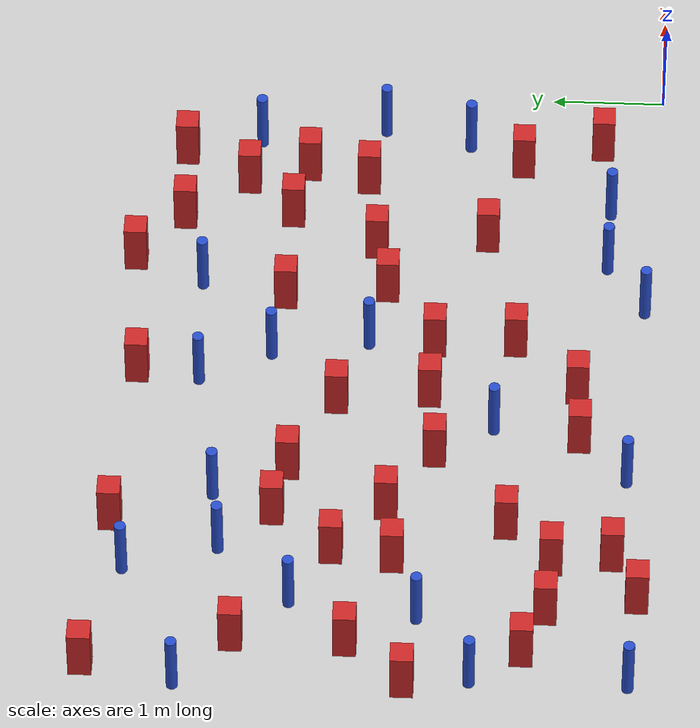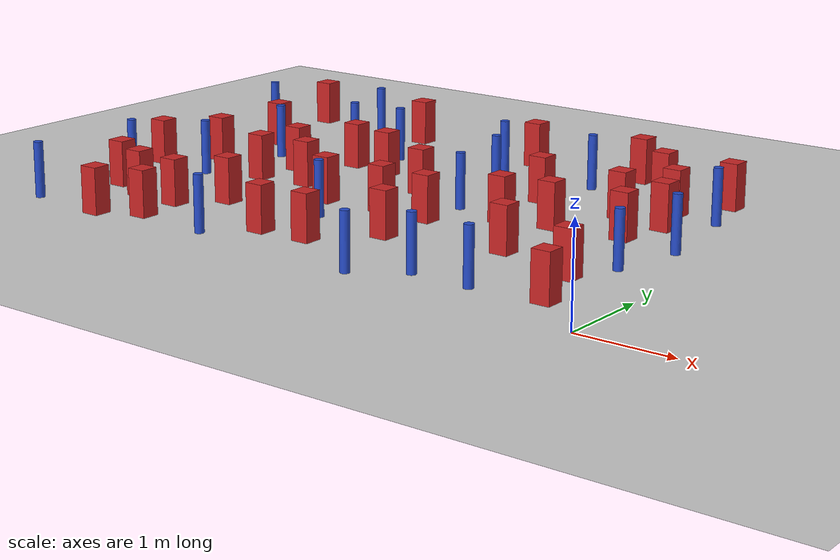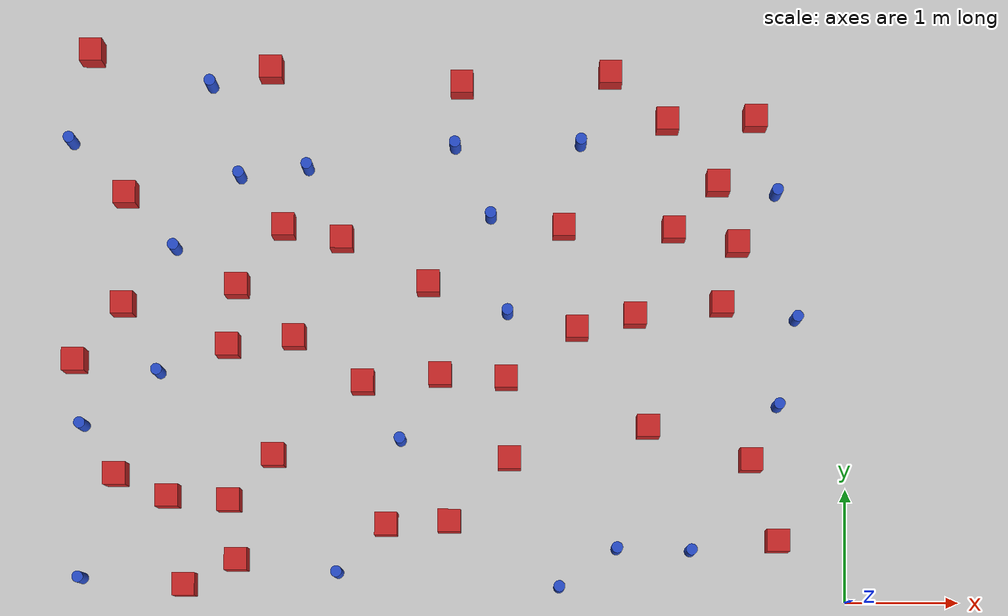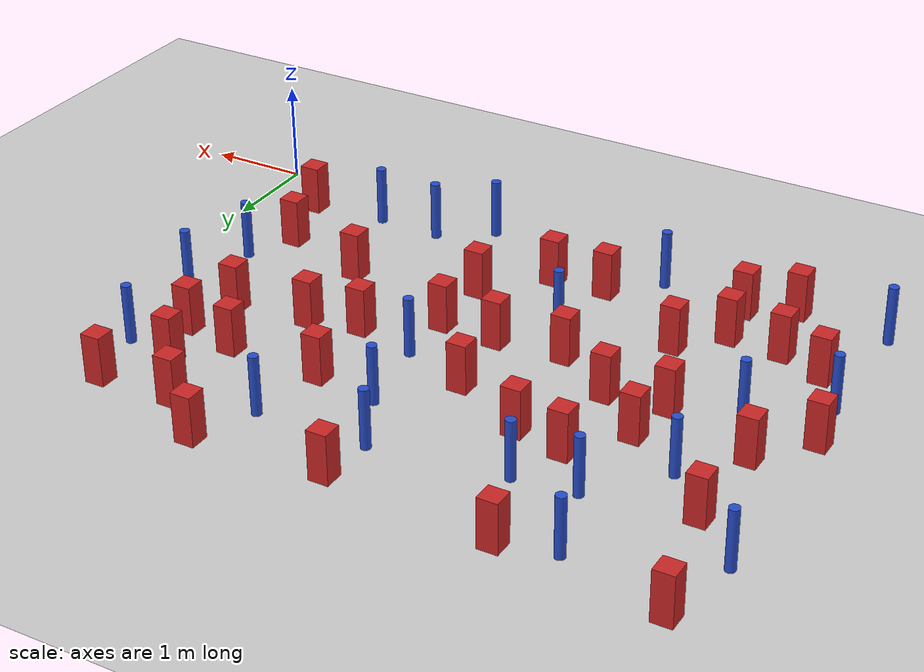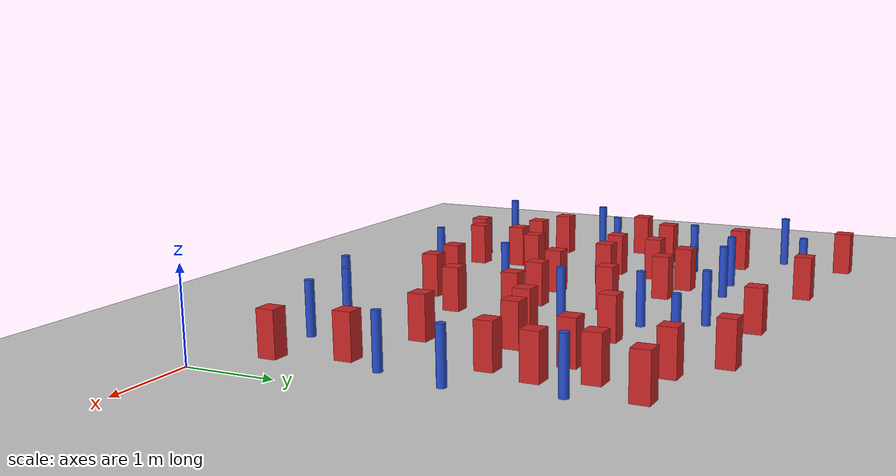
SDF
<sdf version="1.6">
 <world name="default">
  <model name="ground_plane">
   <static>1</static>
   <link name="link">
    <collision name="collision">
     <geometry><plane><normal>0 0 1</normal><size>100 100</size></plane></geometry>
     <surface><friction><ode><mu>100</mu><mu2>50</mu2></ode></friction></surface>
    </collision>
    <visual name="visual">
     <cast_shadows>0</cast_shadows>
     <geometry><plane><normal>0 0 1</normal><size>100 100</size></plane></geometry>
     <material>
      <ambient>1.0 1.0 1.0 1.0</ambient>
      <diffuse>0.8 0.8 0.8 1.0</diffuse>
      <specular>0.01 0.01 0.01 1.000000</specular>
     </material>
    </visual>
   </link>
  </model>
  <model name="square_post_obstacle19">
   <static>true</static>
   <pose>-1.52579116777 3.30003734755 -6.11067671241e-07 -5.50515727128e-06 -8.79689657224e-07 2.37013304536e-05</pose>
   <link name="link">
    <pose>0 0 0.25 0 -0 0</pose>
    <inertial>
     <mass>100</mass>
     <inertia>
      <ixx>0.166667</ixx>
      <ixy>0</ixy>
      <ixz>0</ixz>
      <iyy>0.166667</iyy>
      <iyz>0</iyz>
      <izz>0.166667</izz>
     </inertia>
    </inertial>
    <collision name="collision"><geometry><box><size>.2 .2 .5</size></box></geometry></collision>
    <visual name="visual">
     <geometry><box><size>.2 .2 .5</size></box></geometry>
     <material>
      <script><name>Gazebo/Red</name><uri>file://media/materials/scripts/gazebo.material</uri></script>
     </material>
    </visual>
   </link>
  </model>
  <model name="square_post_obstacle21">
   <static>true</static>
   <pose>-3.70066216727 2.81716564771 -6.11067671241e-07 -5.50515727128e-06 -8.79689657224e-07 2.37013304536e-05</pose>
   <link name="link">
    <pose>0 0 0.25 0 -0 0</pose>
    <inertial>
     <mass>100</mass>
     <inertia>
      <ixx>0.166667</ixx>
      <ixy>0</ixy>
      <ixz>0</ixz>
      <iyy>0.166667</iyy>
      <iyz>0</iyz>
      <izz>0.166667</izz>
     </inertia>
    </inertial>
    <collision name="collision"><geometry><box><size>.2 .2 .5</size></box></geometry></collision>
    <visual name="visual">
     <geometry><box><size>.2 .2 .5</size></box></geometry>
     <material>
      <script><name>Gazebo/Red</name><uri>file://media/materials/scripts/gazebo.material</uri></script>
     </material>
    </visual>
   </link>
  </model>
  <model name="square_post_obstacle23">
   <static>true</static>
   <pose>-6.40421610762 2.62677100715 -6.11067671241e-07 -5.50515727128e-06 -8.79689657224e-07 2.37013304536e-05</pose>
   <link name="link">
    <pose>0 0 0.25 0 -0 0</pose>
    <inertial>
     <mass>100</mass>
     <inertia>
      <ixx>0.166667</ixx>
      <ixy>0</ixy>
      <ixz>0</ixz>
      <iyy>0.166667</iyy>
      <iyz>0</iyz>
      <izz>0.166667</izz>
     </inertia>
    </inertial>
    <collision name="collision"><geometry><box><size>.2 .2 .5</size></box></geometry></collision>
    <visual name="visual">
     <geometry><box><size>.2 .2 .5</size></box></geometry>
     <material>
      <script><name>Gazebo/Red</name><uri>file://media/materials/scripts/gazebo.material</uri></script>
     </material>
    </visual>
   </link>
  </model>
  <model name="square_post_obstacle24">
   <static>true</static>
   <pose>-5.99418448434 0.926012250818 -6.11067671241e-07 -5.50515727128e-06 -8.79689657224e-07 2.37013304536e-05</pose>
   <link name="link">
    <pose>0 0 0.25 0 -0 0</pose>
    <inertial>
     <mass>100</mass>
     <inertia>
      <ixx>0.166667</ixx>
      <ixy>0</ixy>
      <ixz>0</ixz>
      <iyy>0.166667</iyy>
      <iyz>0</iyz>
      <izz>0.166667</izz>
     </inertia>
    </inertial>
    <collision name="collision"><geometry><box><size>.2 .2 .5</size></box></geometry></collision>
    <visual name="visual">
     <geometry><box><size>.2 .2 .5</size></box></geometry>
     <material>
      <script><name>Gazebo/Red</name><uri>file://media/materials/scripts/gazebo.material</uri></script>
     </material>
    </visual>
   </link>
  </model>
  <model name="pole_obstacle21">
   <static>true</static>
   <pose>-4.77502252247 3.84748373212 -9.47619616065e-06 5.49618799738e-07 2.36310414051e-07 -1.55090534805e-07</pose>
   <link name="link">
    <pose>0 0 0.3 0 -0 0</pose>
    <inertial>
     <mass>1</mass>
     <inertia><ixx>0.145833</ixx><ixy>0</ixy><ixz>0</ixz><iyy>0.145833</iyy><iyz>0</iyz><izz>0.125</izz></inertia>
    </inertial>
    <collision name="collision">
     <geometry><cylinder><radius>0.05</radius><length>.6</length></cylinder></geometry>
    </collision>
    <visual name="visual">
     <geometry><cylinder><radius>0.05</radius><length>.6</length></cylinder></geometry>
     <material>
      <script><name>Gazebo/Blue</name><uri>file://media/materials/scripts/gazebo.material</uri></script>
     </material>
    </visual>
   </link>
  </model>
  <model name="square_post_obstacle33">
   <static>true</static>
   <pose>-2.38381822397 2.4193742931 -6.11067671241e-07 -5.50515727128e-06 -8.79689657224e-07 2.37013304536e-05</pose>
   <link name="link">
    <pose>0 0 0.25 0 -0 0</pose>
    <inertial>
     <mass>100</mass>
     <inertia>
      <ixx>0.166667</ixx>
      <ixy>0</ixy>
      <ixz>0</ixz>
      <iyy>0.166667</iyy>
      <iyz>0</iyz>
      <izz>0.166667</izz>
     </inertia>
    </inertial>
    <collision name="collision"><geometry><box><size>.2 .2 .5</size></box></geometry></collision>
    <visual name="visual">
     <geometry><box><size>.2 .2 .5</size></box></geometry>
     <material>
      <script><name>Gazebo/Red</name><uri>file://media/materials/scripts/gazebo.material</uri></script>
     </material>
    </visual>
   </link>
  </model>
  <model name="pole_obstacle30">
   <static>true</static>
   <pose>-2.35172823157 4.06939643298 -9.47619616065e-06 5.49618799738e-07 2.3631041406e-07 -1.55090534801e-07</pose>
   <link name="link">
    <pose>0 0 0.3 0 -0 0</pose>
    <inertial>
     <mass>1</mass>
     <inertia><ixx>0.145833</ixx><ixy>0</ixy><ixz>0</ixz><iyy>0.145833</iyy><iyz>0</iyz><izz>0.125</izz></inertia>
    </inertial>
    <collision name="collision">
     <geometry><cylinder><radius>0.05</radius><length>.6</length></cylinder></geometry>
    </collision>
    <visual name="visual">
     <geometry><cylinder><radius>0.05</radius><length>.6</length></cylinder></geometry>
     <material>
      <script><name>Gazebo/Blue</name><uri>file://media/materials/scripts/gazebo.material</uri></script>
     </material>
    </visual>
   </link>
  </model>
  <model name="square_post_obstacle38">
   <static>true</static>
   <pose>-4.88639136829 2.33557536852 -6.11067671241e-07 -5.50515727128e-06 -8.79689657224e-07 2.37013304536e-05</pose>
   <link name="link">
    <pose>0 0 0.25 0 -0 0</pose>
    <inertial>
     <mass>100</mass>
     <inertia>
      <ixx>0.166667</ixx>
      <ixy>0</ixy>
      <ixz>0</ixz>
      <iyy>0.166667</iyy>
      <iyz>0</iyz>
      <izz>0.166667</izz>
     </inertia>
    </inertial>
    <collision name="collision"><geometry><box><size>.2 .2 .5</size></box></geometry></collision>
    <visual name="visual">
     <geometry><box><size>.2 .2 .5</size></box></geometry>
     <material>
      <script><name>Gazebo/Red</name><uri>file://media/materials/scripts/gazebo.material</uri></script>
     </material>
    </visual>
   </link>
  </model>
  <model name="square_post_obstacle44">
   <static>true</static>
   <pose>-5.39557162124 2.79112560461 -6.11067671241e-07 -5.50515727128e-06 -8.79689657224e-07 2.37013304536e-05</pose>
   <link name="link">
    <pose>0 0 0.25 0 -0 0</pose>
    <inertial>
     <mass>100</mass>
     <inertia>
      <ixx>0.166667</ixx>
      <ixy>0</ixy>
      <ixz>0</ixz>
      <iyy>0.166667</iyy>
      <iyz>0</iyz>
      <izz>0.166667</izz>
     </inertia>
    </inertial>
    <collision name="collision"><geometry><box><size>.2 .2 .5</size></box></geometry></collision>
    <visual name="visual">
     <geometry><box><size>.2 .2 .5</size></box></geometry>
     <material>
      <script><name>Gazebo/Red</name><uri>file://media/materials/scripts/gazebo.material</uri></script>
     </material>
    </visual>
   </link>
  </model>
  <model name="square_post_obstacle58">
   <static>true</static>
   <pose>-0.803881345123 4.29260869137 -6.11067671241e-07 -5.50515727128e-06 -8.79689657224e-07 2.37013304536e-05</pose>
   <link name="link">
    <pose>0 0 0.25 0 -0 0</pose>
    <inertial>
     <mass>100</mass>
     <inertia>
      <ixx>0.166667</ixx>
      <ixy>0</ixy>
      <ixz>0</ixz>
      <iyy>0.166667</iyy>
      <iyz>0</iyz>
      <izz>0.166667</izz>
     </inertia>
    </inertial>
    <collision name="collision"><geometry><box><size>.2 .2 .5</size></box></geometry></collision>
    <visual name="visual">
     <geometry><box><size>.2 .2 .5</size></box></geometry>
     <material>
      <script><name>Gazebo/Red</name><uri>file://media/materials/scripts/gazebo.material</uri></script>
     </material>
    </visual>
   </link>
  </model>
  <model name="pole_obstacle59">
   <static>true</static>
   <pose>-6.7580213585 0.20435659066 -9.47619616065e-06 5.49618799737e-07 2.36310414071e-07 -1.55090534796e-07</pose>
   <link name="link">
    <pose>0 0 0.3 0 -0 0</pose>
    <inertial>
     <mass>1</mass>
     <inertia><ixx>0.145833</ixx><ixy>0</ixy><ixz>0</ixz><iyy>0.145833</iyy><iyz>0</iyz><izz>0.125</izz></inertia>
    </inertial>
    <collision name="collision">
     <geometry><cylinder><radius>0.05</radius><length>.6</length></cylinder></geometry>
    </collision>
    <visual name="visual">
     <geometry><cylinder><radius>0.05</radius><length>.6</length></cylinder></geometry>
     <material>
      <script><name>Gazebo/Blue</name><uri>file://media/materials/scripts/gazebo.material</uri></script>
     </material>
    </visual>
   </link>
  </model>
  <model name="square_post_obstacle63">
   <static>true</static>
   <pose>-4.06434153961 0.677380206214 -6.11067671241e-07 -5.50515727128e-06 -8.79689657224e-07 2.37013304536e-05</pose>
   <link name="link">
    <pose>0 0 0.25 0 -0 0</pose>
    <inertial>
     <mass>100</mass>
     <inertia>
      <ixx>0.166667</ixx>
      <ixy>0</ixy>
      <ixz>0</ixz>
      <iyy>0.166667</iyy>
      <iyz>0</iyz>
      <izz>0.166667</izz>
     </inertia>
    </inertial>
    <collision name="collision"><geometry><box><size>.2 .2 .5</size></box></geometry></collision>
    <visual name="visual">
     <geometry><box><size>.2 .2 .5</size></box></geometry>
     <material>
      <script><name>Gazebo/Red</name><uri>file://media/materials/scripts/gazebo.material</uri></script>
     </material>
    </visual>
   </link>
  </model>
  <model name="pole_obstacle61">
   <static>true</static>
   <pose>-5.94596846426 3.12963911937 -9.47619616065e-06 5.49618799738e-07 2.36310414051e-07 -1.55090534805e-07</pose>
   <link name="link">
    <pose>0 0 0.3 0 -0 0</pose>
    <inertial>
     <mass>1</mass>
     <inertia><ixx>0.145833</ixx><ixy>0</ixy><ixz>0</ixz><iyy>0.145833</iyy><iyz>0</iyz><izz>0.125</izz></inertia>
    </inertial>
    <collision name="collision">
     <geometry><cylinder><radius>0.05</radius><length>.6</length></cylinder></geometry>
    </collision>
    <visual name="visual">
     <geometry><cylinder><radius>0.05</radius><length>.6</length></cylinder></geometry>
     <material>
      <script><name>Gazebo/Blue</name><uri>file://media/materials/scripts/gazebo.material</uri></script>
     </material>
    </visual>
   </link>
  </model>
  <model name="square_post_obstacle65">
   <static>true</static>
   <pose>-6.38829998974 3.6044768363 -6.11067671241e-07 -5.50515727128e-06 -8.79689657224e-07 2.37013304536e-05</pose>
   <link name="link">
    <pose>0 0 0.25 0 -0 0</pose>
    <inertial>
     <mass>100</mass>
     <inertia>
      <ixx>0.166667</ixx>
      <ixy>0</ixy>
      <ixz>0</ixz>
      <iyy>0.166667</iyy>
      <iyz>0</iyz>
      <izz>0.166667</izz>
     </inertia>
    </inertial>
    <collision name="collision"><geometry><box><size>.2 .2 .5</size></box></geometry></collision>
    <visual name="visual">
     <geometry><box><size>.2 .2 .5</size></box></geometry>
     <material>
      <script><name>Gazebo/Red</name><uri>file://media/materials/scripts/gazebo.material</uri></script>
     </material>
    </visual>
   </link>
  </model>
  <model name="square_post_obstacle67">
   <static>true</static>
   <pose>-1.87070292585 2.5382974547 -6.11067671241e-07 -5.50515727128e-06 -8.79689657224e-07 2.37013304536e-05</pose>
   <link name="link">
    <pose>0 0 0.25 0 -0 0</pose>
    <inertial>
     <mass>100</mass>
     <inertia>
      <ixx>0.166667</ixx>
      <ixy>0</ixy>
      <ixz>0</ixz>
      <iyy>0.166667</iyy>
      <iyz>0</iyz>
      <izz>0.166667</izz>
     </inertia>
    </inertial>
    <collision name="collision"><geometry><box><size>.2 .2 .5</size></box></geometry></collision>
    <visual name="visual">
     <geometry><box><size>.2 .2 .5</size></box></geometry>
     <material>
      <script><name>Gazebo/Red</name><uri>file://media/materials/scripts/gazebo.material</uri></script>
     </material>
    </visual>
   </link>
  </model>
  <model name="pole_obstacle66">
   <static>true</static>
   <pose>-5.63336453486 4.58513568871 -9.47619616065e-06 5.49618799737e-07 2.36310414037e-07 -1.55090534814e-07</pose>
   <link name="link">
    <pose>0 0 0.3 0 -0 0</pose>
    <inertial>
     <mass>1</mass>
     <inertia><ixx>0.145833</ixx><ixy>0</ixy><ixz>0</ixz><iyy>0.145833</iyy><iyz>0</iyz><izz>0.125</izz></inertia>
    </inertial>
    <collision name="collision">
     <geometry><cylinder><radius>0.05</radius><length>.6</length></cylinder></geometry>
    </collision>
    <visual name="visual">
     <geometry><cylinder><radius>0.05</radius><length>.6</length></cylinder></geometry>
     <material>
      <script><name>Gazebo/Blue</name><uri>file://media/materials/scripts/gazebo.material</uri></script>
     </material>
    </visual>
   </link>
  </model>
  <model name="square_post_obstacle71">
   <static>true</static>
   <pose>-6.8291633273 2.12342287229 -6.11067671241e-07 -5.50515727128e-06 -8.79689657224e-07 2.37013304536e-05</pose>
   <link name="link">
    <pose>0 0 0.25 0 -0 0</pose>
    <inertial>
     <mass>100</mass>
     <inertia>
      <ixx>0.166667</ixx>
      <ixy>0</ixy>
      <ixz>0</ixz>
      <iyy>0.166667</iyy>
      <iyz>0</iyz>
      <izz>0.166667</izz>
     </inertia>
    </inertial>
    <collision name="collision"><geometry><box><size>.2 .2 .5</size></box></geometry></collision>
    <visual name="visual">
     <geometry><box><size>.2 .2 .5</size></box></geometry>
     <material>
      <script><name>Gazebo/Red</name><uri>file://media/materials/scripts/gazebo.material</uri></script>
     </material>
    </visual>
   </link>
  </model>
  <model name="square_post_obstacle73">
   <static>true</static>
   <pose>-5.47282110267 2.26044008597 -6.11067671241e-07 -5.50515727128e-06 -8.79689657224e-07 2.37013304536e-05</pose>
   <link name="link">
    <pose>0 0 0.25 0 -0 0</pose>
    <inertial>
     <mass>100</mass>
     <inertia>
      <ixx>0.166667</ixx>
      <ixy>0</ixy>
      <ixz>0</ixz>
      <iyy>0.166667</iyy>
      <iyz>0</iyz>
      <izz>0.166667</izz>
     </inertia>
    </inertial>
    <collision name="collision"><geometry><box><size>.2 .2 .5</size></box></geometry></collision>
    <visual name="visual">
     <geometry><box><size>.2 .2 .5</size></box></geometry>
     <material>
      <script><name>Gazebo/Red</name><uri>file://media/materials/scripts/gazebo.material</uri></script>
     </material>
    </visual>
   </link>
  </model>
  <model name="pole_obstacle69">
   <static>true</static>
   <pose>-3.14882986907 3.41590611755 -9.47619616065e-06 5.49618799737e-07 2.36310414067e-07 -1.55090534797e-07</pose>
   <link name="link">
    <pose>0 0 0.3 0 -0 0</pose>
    <inertial>
     <mass>1</mass>
     <inertia><ixx>0.145833</ixx><ixy>0</ixy><ixz>0</ixz><iyy>0.145833</iyy><iyz>0</iyz><izz>0.125</izz></inertia>
    </inertial>
    <collision name="collision">
     <geometry><cylinder><radius>0.05</radius><length>.6</length></cylinder></geometry>
    </collision>
    <visual name="visual">
     <geometry><cylinder><radius>0.05</radius><length>.6</length></cylinder></geometry>
     <material>
      <script><name>Gazebo/Blue</name><uri>file://media/materials/scripts/gazebo.material</uri></script>
     </material>
    </visual>
   </link>
  </model>
  <model name="pole_obstacle71">
   <static>true</static>
   <pose>-0.44475211655 2.50794854495 -9.47619616065e-06 5.49618799738e-07 2.36310414065e-07 -1.55090534798e-07</pose>
   <link name="link">
    <pose>0 0 0.3 0 -0 0</pose>
    <inertial>
     <mass>1</mass>
     <inertia><ixx>0.145833</ixx><ixy>0</ixy><ixz>0</ixz><iyy>0.145833</iyy><iyz>0</iyz><izz>0.125</izz></inertia>
    </inertial>
    <collision name="collision">
     <geometry><cylinder><radius>0.05</radius><length>.6</length></cylinder></geometry>
    </collision>
    <visual name="visual">
     <geometry><cylinder><radius>0.05</radius><length>.6</length></cylinder></geometry>
     <material>
      <script><name>Gazebo/Blue</name><uri>file://media/materials/scripts/gazebo.material</uri></script>
     </material>
    </visual>
   </link>
  </model>
  <model name="pole_obstacle74">
   <static>true</static>
   <pose>-0.619230311779 3.6266434264 -9.47619616065e-06 5.49618799737e-07 2.36310414066e-07 -1.55090534797e-07</pose>
   <link name="link">
    <pose>0 0 0.3 0 -0 0</pose>
    <inertial>
     <mass>1</mass>
     <inertia><ixx>0.145833</ixx><ixy>0</ixy><ixz>0</ixz><iyy>0.145833</iyy><iyz>0</iyz><izz>0.125</izz></inertia>
    </inertial>
    <collision name="collision">
     <geometry><cylinder><radius>0.05</radius><length>.6</length></cylinder></geometry>
    </collision>
    <visual name="visual">
     <geometry><cylinder><radius>0.05</radius><length>.6</length></cylinder></geometry>
     <material>
      <script><name>Gazebo/Blue</name><uri>file://media/materials/scripts/gazebo.material</uri></script>
     </material>
    </visual>
   </link>
  </model>
  <model name="square_post_obstacle80">
   <static>true</static>
   <pose>-2.50008113558 3.32179684224 -6.11067671241e-07 -5.50515727128e-06 -8.79689657224e-07 2.37013304536e-05</pose>
   <link name="link">
    <pose>0 0 0.25 0 -0 0</pose>
    <inertial>
     <mass>100</mass>
     <inertia>
      <ixx>0.166667</ixx>
      <ixy>0</ixy>
      <ixz>0</ixz>
      <iyy>0.166667</iyy>
      <iyz>0</iyz>
      <izz>0.166667</izz>
     </inertia>
    </inertial>
    <collision name="collision"><geometry><box><size>.2 .2 .5</size></box></geometry></collision>
    <visual name="visual">
     <geometry><box><size>.2 .2 .5</size></box></geometry>
     <material>
      <script><name>Gazebo/Red</name><uri>file://media/materials/scripts/gazebo.material</uri></script>
     </material>
    </visual>
   </link>
  </model>
  <model name="square_post_obstacle88">
   <static>true</static>
   <pose>-0.959719700198 3.17669733427 -6.11067671241e-07 -5.50515727128e-06 -8.79689657224e-07 2.37013304536e-05</pose>
   <link name="link">
    <pose>0 0 0.25 0 -0 0</pose>
    <inertial>
     <mass>100</mass>
     <inertia>
      <ixx>0.166667</ixx>
      <ixy>0</ixy>
      <ixz>0</ixz>
      <iyy>0.166667</iyy>
      <iyz>0</iyz>
      <izz>0.166667</izz>
     </inertia>
    </inertial>
    <collision name="collision"><geometry><box><size>.2 .2 .5</size></box></geometry></collision>
    <visual name="visual">
     <geometry><box><size>.2 .2 .5</size></box></geometry>
     <material>
      <script><name>Gazebo/Red</name><uri>file://media/materials/scripts/gazebo.material</uri></script>
     </material>
    </visual>
   </link>
  </model>
  <model name="square_post_obstacle95">
   <static>true</static>
   <pose>-3.59345038558 2.00390824939 -6.11067671241e-07 -5.50515727128e-06 -8.79689657224e-07 2.37013304536e-05</pose>
   <link name="link">
    <pose>0 0 0.25 0 -0 0</pose>
    <inertial>
     <mass>100</mass>
     <inertia>
      <ixx>0.166667</ixx>
      <ixy>0</ixy>
      <ixz>0</ixz>
      <iyy>0.166667</iyy>
      <iyz>0</iyz>
      <izz>0.166667</izz>
     </inertia>
    </inertial>
    <collision name="collision"><geometry><box><size>.2 .2 .5</size></box></geometry></collision>
    <visual name="visual">
     <geometry><box><size>.2 .2 .5</size></box></geometry>
     <material>
      <script><name>Gazebo/Red</name><uri>file://media/materials/scripts/gazebo.material</uri></script>
     </material>
    </visual>
   </link>
  </model>
  <model name="square_post_obstacle98">
   <static>true</static>
   <pose>-5.0633263727 1.28955197793 -6.11067671241e-07 -5.50515727128e-06 -8.79689657224e-07 2.37013304536e-05</pose>
   <link name="link">
    <pose>0 0 0.25 0 -0 0</pose>
    <inertial>
     <mass>100</mass>
     <inertia>
      <ixx>0.166667</ixx>
      <ixy>0</ixy>
      <ixz>0</ixz>
      <iyy>0.166667</iyy>
      <iyz>0</iyz>
      <izz>0.166667</izz>
     </inertia>
    </inertial>
    <collision name="collision"><geometry><box><size>.2 .2 .5</size></box></geometry></collision>
    <visual name="visual">
     <geometry><box><size>.2 .2 .5</size></box></geometry>
     <material>
      <script><name>Gazebo/Red</name><uri>file://media/materials/scripts/gazebo.material</uri></script>
     </material>
    </visual>
   </link>
  </model>
  <model name="square_post_obstacle111">
   <static>true</static>
   <pose>-1.75470090523 1.54796149326 -6.11067671241e-07 -5.50515727128e-06 -8.79689657224e-07 2.37013304536e-05</pose>
   <link name="link">
    <pose>0 0 0.25 0 -0 0</pose>
    <inertial>
     <mass>100</mass>
     <inertia>
      <ixx>0.166667</ixx>
      <ixy>0</ixy>
      <ixz>0</ixz>
      <iyy>0.166667</iyy>
      <iyz>0</iyz>
      <izz>0.166667</izz>
     </inertia>
    </inertial>
    <collision name="collision"><geometry><box><size>.2 .2 .5</size></box></geometry></collision>
    <visual name="visual">
     <geometry><box><size>.2 .2 .5</size></box></geometry>
     <material>
      <script><name>Gazebo/Red</name><uri>file://media/materials/scripts/gazebo.material</uri></script>
     </material>
    </visual>
   </link>
  </model>
  <model name="pole_obstacle131">
   <static>true</static>
   <pose>-6.87180715354 4.07577843051 -9.47619616065e-06 5.49618799737e-07 2.36310414037e-07 -1.55090534814e-07</pose>
   <link name="link">
    <pose>0 0 0.3 0 -0 0</pose>
    <inertial>
     <mass>1</mass>
     <inertia><ixx>0.145833</ixx><ixy>0</ixy><ixz>0</ixz><iyy>0.145833</iyy><iyz>0</iyz><izz>0.125</izz></inertia>
    </inertial>
    <collision name="collision">
     <geometry><cylinder><radius>0.05</radius><length>.6</length></cylinder></geometry>
    </collision>
    <visual name="visual">
     <geometry><cylinder><radius>0.05</radius><length>.6</length></cylinder></geometry>
     <material>
      <script><name>Gazebo/Blue</name><uri>file://media/materials/scripts/gazebo.material</uri></script>
     </material>
    </visual>
   </link>
  </model>
  <model name="pole_obstacle132">
   <static>true</static>
   <pose>-2.53808070265 0.130372882891 -9.47619616065e-06 5.49618799737e-07 2.36310414074e-07 -1.55090534793e-07</pose>
   <link name="link">
    <pose>0 0 0.3 0 -0 0</pose>
    <inertial>
     <mass>1</mass>
     <inertia><ixx>0.145833</ixx><ixy>0</ixy><ixz>0</ixz><iyy>0.145833</iyy><iyz>0</iyz><izz>0.125</izz></inertia>
    </inertial>
    <collision name="collision">
     <geometry><cylinder><radius>0.05</radius><length>.6</length></cylinder></geometry>
    </collision>
    <visual name="visual">
     <geometry><cylinder><radius>0.05</radius><length>.6</length></cylinder></geometry>
     <material>
      <script><name>Gazebo/Blue</name><uri>file://media/materials/scripts/gazebo.material</uri></script>
     </material>
    </visual>
   </link>
  </model>
  <model name="square_post_obstacle115">
   <static>true</static>
   <pose>-5.38275376708 0.367602439897 -6.11067671241e-07 -5.50515727128e-06 -8.79689657224e-07 2.37013304536e-05</pose>
   <link name="link">
    <pose>0 0 0.25 0 -0 0</pose>
    <inertial>
     <mass>100</mass>
     <inertia>
      <ixx>0.166667</ixx>
      <ixy>0</ixy>
      <ixz>0</ixz>
      <iyy>0.166667</iyy>
      <iyz>0</iyz>
      <izz>0.166667</izz>
     </inertia>
    </inertial>
    <collision name="collision"><geometry><box><size>.2 .2 .5</size></box></geometry></collision>
    <visual name="visual">
     <geometry><box><size>.2 .2 .5</size></box></geometry>
     <material>
      <script><name>Gazebo/Red</name><uri>file://media/materials/scripts/gazebo.material</uri></script>
     </material>
    </visual>
   </link>
  </model>
  <model name="pole_obstacle134">
   <static>true</static>
   <pose>-0.606899462034 1.73647849546 -9.47619616065e-06 5.49618799738e-07 2.36310414061e-07 -1.55090534801e-07</pose>
   <link name="link">
    <pose>0 0 0.3 0 -0 0</pose>
    <inertial>
     <mass>1</mass>
     <inertia><ixx>0.145833</ixx><ixy>0</ixy><ixz>0</ixz><iyy>0.145833</iyy><iyz>0</iyz><izz>0.125</izz></inertia>
    </inertial>
    <collision name="collision">
     <geometry><cylinder><radius>0.05</radius><length>.6</length></cylinder></geometry>
    </collision>
    <visual name="visual">
     <geometry><cylinder><radius>0.05</radius><length>.6</length></cylinder></geometry>
     <material>
      <script><name>Gazebo/Blue</name><uri>file://media/materials/scripts/gazebo.material</uri></script>
     </material>
    </visual>
   </link>
  </model>
  <model name="square_post_obstacle123">
   <static>true</static>
   <pose>-2.97985816169 1.26475247535 -6.11067671241e-07 -5.50515727128e-06 -8.79689657224e-07 2.37013304536e-05</pose>
   <link name="link">
    <pose>0 0 0.25 0 -0 0</pose>
    <inertial>
     <mass>100</mass>
     <inertia>
      <ixx>0.166667</ixx>
      <ixy>0</ixy>
      <ixz>0</ixz>
      <iyy>0.166667</iyy>
      <iyz>0</iyz>
      <izz>0.166667</izz>
     </inertia>
    </inertial>
    <collision name="collision"><geometry><box><size>.2 .2 .5</size></box></geometry></collision>
    <visual name="visual">
     <geometry><box><size>.2 .2 .5</size></box></geometry>
     <material>
      <script><name>Gazebo/Red</name><uri>file://media/materials/scripts/gazebo.material</uri></script>
     </material>
    </visual>
   </link>
  </model>
  <model name="square_post_obstacle126">
   <static>true</static>
   <pose>-3.40852447928 4.58946892957 -6.11067671241e-07 -5.50515727128e-06 -8.79689657224e-07 2.37013304536e-05</pose>
   <link name="link">
    <pose>0 0 0.25 0 -0 0</pose>
    <inertial>
     <mass>100</mass>
     <inertia>
      <ixx>0.166667</ixx>
      <ixy>0</ixy>
      <ixz>0</ixz>
      <iyy>0.166667</iyy>
      <iyz>0</iyz>
      <izz>0.166667</izz>
     </inertia>
    </inertial>
    <collision name="collision"><geometry><box><size>.2 .2 .5</size></box></geometry></collision>
    <visual name="visual">
     <geometry><box><size>.2 .2 .5</size></box></geometry>
     <material>
      <script><name>Gazebo/Red</name><uri>file://media/materials/scripts/gazebo.material</uri></script>
     </material>
    </visual>
   </link>
  </model>
  <model name="square_post_obstacle134">
   <static>true</static>
   <pose>-5.84011537136 0.145340962174 -6.11067671241e-07 -5.50515727128e-06 -8.79689657224e-07 2.37013304536e-05</pose>
   <link name="link">
    <pose>0 0 0.25 0 -0 0</pose>
    <inertial>
     <mass>100</mass>
     <inertia>
      <ixx>0.166667</ixx>
      <ixy>0</ixy>
      <ixz>0</ixz>
      <iyy>0.166667</iyy>
      <iyz>0</iyz>
      <izz>0.166667</izz>
     </inertia>
    </inertial>
    <collision name="collision"><geometry><box><size>.2 .2 .5</size></box></geometry></collision>
    <visual name="visual">
     <geometry><box><size>.2 .2 .5</size></box></geometry>
     <material>
      <script><name>Gazebo/Red</name><uri>file://media/materials/scripts/gazebo.material</uri></script>
     </material>
    </visual>
   </link>
  </model>
  <model name="pole_obstacle145">
   <static>true</static>
   <pose>-3.4677220563 4.0425422302 -9.47619616065e-06 5.49618799738e-07 2.36310414077e-07 -1.55090534791e-07</pose>
   <link name="link">
    <pose>0 0 0.3 0 -0 0</pose>
    <inertial>
     <mass>1</mass>
     <inertia><ixx>0.145833</ixx><ixy>0</ixy><ixz>0</ixz><iyy>0.145833</iyy><iyz>0</iyz><izz>0.125</izz></inertia>
    </inertial>
    <collision name="collision">
     <geometry><cylinder><radius>0.05</radius><length>.6</length></cylinder></geometry>
    </collision>
    <visual name="visual">
     <geometry><cylinder><radius>0.05</radius><length>.6</length></cylinder></geometry>
     <material>
      <script><name>Gazebo/Blue</name><uri>file://media/materials/scripts/gazebo.material</uri></script>
     </material>
    </visual>
   </link>
  </model>
  <model name="square_post_obstacle138">
   <static>true</static>
   <pose>-3.50629875439 0.707167762534 -6.11067671241e-07 -5.50515727128e-06 -8.79689657224e-07 2.37013304536e-05</pose>
   <link name="link">
    <pose>0 0 0.25 0 -0 0</pose>
    <inertial>
     <mass>100</mass>
     <inertia>
      <ixx>0.166667</ixx>
      <ixy>0</ixy>
      <ixz>0</ixz>
      <iyy>0.166667</iyy>
      <iyz>0</iyz>
      <izz>0.166667</izz>
     </inertia>
    </inertial>
    <collision name="collision"><geometry><box><size>.2 .2 .5</size></box></geometry></collision>
    <visual name="visual">
     <geometry><box><size>.2 .2 .5</size></box></geometry>
     <material>
      <script><name>Gazebo/Red</name><uri>file://media/materials/scripts/gazebo.material</uri></script>
     </material>
    </visual>
   </link>
  </model>
  <model name="square_post_obstacle144">
   <static>true</static>
   <pose>-3.00849329234 1.97946603995 -6.11067671241e-07 -5.50515727128e-06 -8.79689657224e-07 2.37013304536e-05</pose>
   <link name="link">
    <pose>0 0 0.25 0 -0 0</pose>
    <inertial>
     <mass>100</mass>
     <inertia>
      <ixx>0.166667</ixx>
      <ixy>0</ixy>
      <ixz>0</ixz>
      <iyy>0.166667</iyy>
      <iyz>0</iyz>
      <izz>0.166667</izz>
     </inertia>
    </inertial>
    <collision name="collision"><geometry><box><size>.2 .2 .5</size></box></geometry></collision>
    <visual name="visual">
     <geometry><box><size>.2 .2 .5</size></box></geometry>
     <material>
      <script><name>Gazebo/Red</name><uri>file://media/materials/scripts/gazebo.material</uri></script>
     </material>
    </visual>
   </link>
  </model>
  <model name="square_post_obstacle145">
   <static>true</static>
   <pose>-1.1347792615 3.71301693967 -6.11067671241e-07 -5.50515727128e-06 -8.79689657224e-07 2.37013304536e-05</pose>
   <link name="link">
    <pose>0 0 0.25 0 -0 0</pose>
    <inertial>
     <mass>100</mass>
     <inertia>
      <ixx>0.166667</ixx>
      <ixy>0</ixy>
      <ixz>0</ixz>
      <iyy>0.166667</iyy>
      <iyz>0</iyz>
      <izz>0.166667</izz>
     </inertia>
    </inertial>
    <collision name="collision"><geometry><box><size>.2 .2 .5</size></box></geometry></collision>
    <visual name="visual">
     <geometry><box><size>.2 .2 .5</size></box></geometry>
     <material>
      <script><name>Gazebo/Red</name><uri>file://media/materials/scripts/gazebo.material</uri></script>
     </material>
    </visual>
   </link>
  </model>
  <model name="pole_obstacle156">
   <static>true</static>
   <pose>-3.94334305563 1.42898599777 -9.47619616065e-06 5.49618799737e-07 2.3631041403e-07 -1.5509053482e-07</pose>
   <link name="link">
    <pose>0 0 0.3 0 -0 0</pose>
    <inertial>
     <mass>1</mass>
     <inertia><ixx>0.145833</ixx><ixy>0</ixy><ixz>0</ixz><iyy>0.145833</iyy><iyz>0</iyz><izz>0.125</izz></inertia>
    </inertial>
    <collision name="collision">
     <geometry><cylinder><radius>0.05</radius><length>.6</length></cylinder></geometry>
    </collision>
    <visual name="visual">
     <geometry><cylinder><radius>0.05</radius><length>.6</length></cylinder></geometry>
     <material>
      <script><name>Gazebo/Blue</name><uri>file://media/materials/scripts/gazebo.material</uri></script>
     </material>
    </visual>
   </link>
  </model>
  <model name="square_post_obstacle150">
   <static>true</static>
   <pose>-0.613045735393 0.539557580116 -6.11067671241e-07 -5.50515727128e-06 -8.79689657224e-07 2.37013304536e-05</pose>
   <link name="link">
    <pose>0 0 0.25 0 -0 0</pose>
    <inertial>
     <mass>100</mass>
     <inertia>
      <ixx>0.166667</ixx>
      <ixy>0</ixy>
      <ixz>0</ixz>
      <iyy>0.166667</iyy>
      <iyz>0</iyz>
      <izz>0.166667</izz>
     </inertia>
    </inertial>
    <collision name="collision"><geometry><box><size>.2 .2 .5</size></box></geometry></collision>
    <visual name="visual">
     <geometry><box><size>.2 .2 .5</size></box></geometry>
     <material>
      <script><name>Gazebo/Red</name><uri>file://media/materials/scripts/gazebo.material</uri></script>
     </material>
    </visual>
   </link>
  </model>
  <model name="square_post_obstacle151">
   <static>true</static>
   <pose>-0.847157286845 1.25340892965 -6.11067671241e-07 -5.50515727128e-06 -8.79689657224e-07 2.37013304536e-05</pose>
   <link name="link">
    <pose>0 0 0.25 0 -0 0</pose>
    <inertial>
     <mass>100</mass>
     <inertia>
      <ixx>0.166667</ixx>
      <ixy>0</ixy>
      <ixz>0</ixz>
      <iyy>0.166667</iyy>
      <iyz>0</iyz>
      <izz>0.166667</izz>
     </inertia>
    </inertial>
    <collision name="collision"><geometry><box><size>.2 .2 .5</size></box></geometry></collision>
    <visual name="visual">
     <geometry><box><size>.2 .2 .5</size></box></geometry>
     <material>
      <script><name>Gazebo/Red</name><uri>file://media/materials/scripts/gazebo.material</uri></script>
     </material>
    </visual>
   </link>
  </model>
  <model name="pole_obstacle158">
   <static>true</static>
   <pose>-5.37566503453 3.77112227317 -9.47619616065e-06 5.49618799738e-07 2.36310414051e-07 -1.55090534805e-07</pose>
   <link name="link">
    <pose>0 0 0.3 0 -0 0</pose>
    <inertial>
     <mass>1</mass>
     <inertia><ixx>0.145833</ixx><ixy>0</ixy><ixz>0</ixz><iyy>0.145833</iyy><iyz>0</iyz><izz>0.125</izz></inertia>
    </inertial>
    <collision name="collision">
     <geometry><cylinder><radius>0.05</radius><length>.6</length></cylinder></geometry>
    </collision>
    <visual name="visual">
     <geometry><cylinder><radius>0.05</radius><length>.6</length></cylinder></geometry>
     <material>
      <script><name>Gazebo/Blue</name><uri>file://media/materials/scripts/gazebo.material</uri></script>
     </material>
    </visual>
   </link>
  </model>
  <model name="pole_obstacle161">
   <static>true</static>
   <pose>-4.49433794164 0.255650774718 -9.47619616065e-06 5.49618799737e-07 2.3631041406e-07 -1.550905348e-07</pose>
   <link name="link">
    <pose>0 0 0.3 0 -0 0</pose>
    <inertial>
     <mass>1</mass>
     <inertia><ixx>0.145833</ixx><ixy>0</ixy><ixz>0</ixz><iyy>0.145833</iyy><iyz>0</iyz><izz>0.125</izz></inertia>
    </inertial>
    <collision name="collision">
     <geometry><cylinder><radius>0.05</radius><length>.6</length></cylinder></geometry>
    </collision>
    <visual name="visual">
     <geometry><cylinder><radius>0.05</radius><length>.6</length></cylinder></geometry>
     <material>
      <script><name>Gazebo/Blue</name><uri>file://media/materials/scripts/gazebo.material</uri></script>
     </material>
    </visual>
   </link>
  </model>
  <model name="pole_obstacle162">
   <static>true</static>
   <pose>-2.99849303325 2.56104893063 -9.47619616065e-06 5.49618799737e-07 2.36310414051e-07 -1.55090534807e-07</pose>
   <link name="link">
    <pose>0 0 0.3 0 -0 0</pose>
    <inertial>
     <mass>1</mass>
     <inertia><ixx>0.145833</ixx><ixy>0</ixy><ixz>0</ixz><iyy>0.145833</iyy><iyz>0</iyz><izz>0.125</izz></inertia>
    </inertial>
    <collision name="collision">
     <geometry><cylinder><radius>0.05</radius><length>.6</length></cylinder></geometry>
    </collision>
    <visual name="visual">
     <geometry><cylinder><radius>0.05</radius><length>.6</length></cylinder></geometry>
     <material>
      <script><name>Gazebo/Blue</name><uri>file://media/materials/scripts/gazebo.material</uri></script>
     </material>
    </visual>
   </link>
  </model>
  <model name="square_post_obstacle155">
   <static>true</static>
   <pose>-2.08979743359 4.68055138314 -6.11067671241e-07 -5.50515727128e-06 -8.79689657224e-07 2.37013304536e-05</pose>
   <link name="link">
    <pose>0 0 0.25 0 -0 0</pose>
    <inertial>
     <mass>100</mass>
     <inertia>
      <ixx>0.166667</ixx>
      <ixy>0</ixy>
      <ixz>0</ixz>
      <iyy>0.166667</iyy>
      <iyz>0</iyz>
      <izz>0.166667</izz>
     </inertia>
    </inertial>
    <collision name="collision"><geometry><box><size>.2 .2 .5</size></box></geometry></collision>
    <visual name="visual">
     <geometry><box><size>.2 .2 .5</size></box></geometry>
     <material>
      <script><name>Gazebo/Red</name><uri>file://media/materials/scripts/gazebo.material</uri></script>
     </material>
    </visual>
   </link>
  </model>
  <model name="square_post_obstacle159">
   <static>true</static>
   <pose>-6.69617532204 4.86886887534 -6.11067671241e-07 -5.50515727128e-06 -8.79689657224e-07 2.37013304536e-05</pose>
   <link name="link">
    <pose>0 0 0.25 0 -0 0</pose>
    <inertial>
     <mass>100</mass>
     <inertia>
      <ixx>0.166667</ixx>
      <ixy>0</ixy>
      <ixz>0</ixz>
      <iyy>0.166667</iyy>
      <iyz>0</iyz>
      <izz>0.166667</izz>
     </inertia>
    </inertial>
    <collision name="collision"><geometry><box><size>.2 .2 .5</size></box></geometry></collision>
    <visual name="visual">
     <geometry><box><size>.2 .2 .5</size></box></geometry>
     <material>
      <script><name>Gazebo/Red</name><uri>file://media/materials/scripts/gazebo.material</uri></script>
     </material>
    </visual>
   </link>
  </model>
  <model name="pole_obstacle169">
   <static>true</static>
   <pose>-1.37886947082 0.453962139269 -9.47619616065e-06 5.49618799738e-07 2.36310414062e-07 -1.55090534799e-07</pose>
   <link name="link">
    <pose>0 0 0.3 0 -0 0</pose>
    <inertial>
     <mass>1</mass>
     <inertia><ixx>0.145833</ixx><ixy>0</ixy><ixz>0</ixz><iyy>0.145833</iyy><iyz>0</iyz><izz>0.125</izz></inertia>
    </inertial>
    <collision name="collision">
     <geometry><cylinder><radius>0.05</radius><length>.6</length></cylinder></geometry>
    </collision>
    <visual name="visual">
     <geometry><cylinder><radius>0.05</radius><length>.6</length></cylinder></geometry>
     <material>
      <script><name>Gazebo/Blue</name><uri>file://media/materials/scripts/gazebo.material</uri></script>
     </material>
    </visual>
   </link>
  </model>
  <model name="square_post_obstacle162">
   <static>true</static>
   <pose>-5.10107370258 4.71941599406 -6.11067671241e-07 -5.50515727128e-06 -8.79689657224e-07 2.37013304536e-05</pose>
   <link name="link">
    <pose>0 0 0.25 0 -0 0</pose>
    <inertial>
     <mass>100</mass>
     <inertia>
      <ixx>0.166667</ixx>
      <ixy>0</ixy>
      <ixz>0</ixz>
      <iyy>0.166667</iyy>
      <iyz>0</iyz>
      <izz>0.166667</izz>
     </inertia>
    </inertial>
    <collision name="collision"><geometry><box><size>.2 .2 .5</size></box></geometry></collision>
    <visual name="visual">
     <geometry><box><size>.2 .2 .5</size></box></geometry>
     <material>
      <script><name>Gazebo/Red</name><uri>file://media/materials/scripts/gazebo.material</uri></script>
     </material>
    </visual>
   </link>
  </model>
  <model name="square_post_obstacle166">
   <static>true</static>
   <pose>-1.58419185702 4.26829440705 -6.11067671241e-07 -5.50515727128e-06 -8.79689657224e-07 2.37013304536e-05</pose>
   <link name="link">
    <pose>0 0 0.25 0 -0 0</pose>
    <inertial>
     <mass>100</mass>
     <inertia>
      <ixx>0.166667</ixx>
      <ixy>0</ixy>
      <ixz>0</ixz>
      <iyy>0.166667</iyy>
      <iyz>0</iyz>
      <izz>0.166667</izz>
     </inertia>
    </inertial>
    <collision name="collision"><geometry><box><size>.2 .2 .5</size></box></geometry></collision>
    <visual name="visual">
     <geometry><box><size>.2 .2 .5</size></box></geometry>
     <material>
      <script><name>Gazebo/Red</name><uri>file://media/materials/scripts/gazebo.material</uri></script>
     </material>
    </visual>
   </link>
  </model>
  <model name="pole_obstacle185">
   <static>true</static>
   <pose>-2.03098994453 0.470656434838 -9.47619616065e-06 5.49618799737e-07 2.3631041406e-07 -1.550905348e-07</pose>
   <link name="link">
    <pose>0 0 0.3 0 -0 0</pose>
    <inertial>
     <mass>1</mass>
     <inertia><ixx>0.145833</ixx><ixy>0</ixy><ixz>0</ixz><iyy>0.145833</iyy><iyz>0</iyz><izz>0.125</izz></inertia>
    </inertial>
    <collision name="collision">
     <geometry><cylinder><radius>0.05</radius><length>.6</length></cylinder></geometry>
    </collision>
    <visual name="visual">
     <geometry><cylinder><radius>0.05</radius><length>.6</length></cylinder></geometry>
     <material>
      <script><name>Gazebo/Blue</name><uri>file://media/materials/scripts/gazebo.material</uri></script>
     </material>
    </visual>
   </link>
  </model>
  <model name="square_post_obstacle185">
   <static>true</static>
   <pose>-4.46888310749 3.20965489585 -6.11067671241e-07 -5.50515727128e-06 -8.79689657224e-07 2.37013304536e-05</pose>
   <link name="link">
    <pose>0 0 0.25 0 -0 0</pose>
    <inertial>
     <mass>100</mass>
     <inertia>
      <ixx>0.166667</ixx>
      <ixy>0</ixy>
      <ixz>0</ixz>
      <iyy>0.166667</iyy>
      <iyz>0</iyz>
      <izz>0.166667</izz>
     </inertia>
    </inertial>
    <collision name="collision"><geometry><box><size>.2 .2 .5</size></box></geometry></collision>
    <visual name="visual">
     <geometry><box><size>.2 .2 .5</size></box></geometry>
     <material>
      <script><name>Gazebo/Red</name><uri>file://media/materials/scripts/gazebo.material</uri></script>
     </material>
    </visual>
   </link>
  </model>
  <model name="square_post_obstacle202">
   <static>true</static>
   <pose>-4.27654646855 1.93679134713 -6.11067671241e-07 -5.50515727128e-06 -8.79689657224e-07 2.37013304536e-05</pose>
   <link name="link">
    <pose>0 0 0.25 0 -0 0</pose>
    <inertial>
     <mass>100</mass>
     <inertia>
      <ixx>0.166667</ixx>
      <ixy>0</ixy>
      <ixz>0</ixz>
      <iyy>0.166667</iyy>
      <iyz>0</iyz>
      <izz>0.166667</izz>
     </inertia>
    </inertial>
    <collision name="collision"><geometry><box><size>.2 .2 .5</size></box></geometry></collision>
    <visual name="visual">
     <geometry><box><size>.2 .2 .5</size></box></geometry>
     <material>
      <script><name>Gazebo/Red</name><uri>file://media/materials/scripts/gazebo.material</uri></script>
     </material>
    </visual>
   </link>
  </model>
  <model name="square_post_obstacle205">
   <static>true</static>
   <pose>-4.9841870533 3.31977558174 -6.11067671241e-07 -5.50515727128e-06 -8.79689657224e-07 2.37013304536e-05</pose>
   <link name="link">
    <pose>0 0 0.25 0 -0 0</pose>
    <inertial>
     <mass>100</mass>
     <inertia>
      <ixx>0.166667</ixx>
      <ixy>0</ixy>
      <ixz>0</ixz>
      <iyy>0.166667</iyy>
      <iyz>0</iyz>
      <izz>0.166667</izz>
     </inertia>
    </inertial>
    <collision name="collision"><geometry><box><size>.2 .2 .5</size></box></geometry></collision>
    <visual name="visual">
     <geometry><box><size>.2 .2 .5</size></box></geometry>
     <material>
      <script><name>Gazebo/Red</name><uri>file://media/materials/scripts/gazebo.material</uri></script>
     </material>
    </visual>
   </link>
  </model>
  <model name="square_post_obstacle206">
   <static>true</static>
   <pose>-1.10019328674 2.63846251748 -6.11067671241e-07 -5.50515727128e-06 -8.79689657224e-07 2.37013304536e-05</pose>
   <link name="link">
    <pose>0 0 0.25 0 -0 0</pose>
    <inertial>
     <mass>100</mass>
     <inertia>
      <ixx>0.166667</ixx>
      <ixy>0</ixy>
      <ixz>0</ixz>
      <iyy>0.166667</iyy>
      <iyz>0</iyz>
      <izz>0.166667</izz>
     </inertia>
    </inertial>
    <collision name="collision"><geometry><box><size>.2 .2 .5</size></box></geometry></collision>
    <visual name="visual">
     <geometry><box><size>.2 .2 .5</size></box></geometry>
     <material>
      <script><name>Gazebo/Red</name><uri>file://media/materials/scripts/gazebo.material</uri></script>
     </material>
    </visual>
   </link>
  </model>
  <model name="square_post_obstacle215">
   <static>true</static>
   <pose>-5.45144812238 0.890510625799 -6.11067671241e-07 -5.50515727128e-06 -8.79689657224e-07 2.37013304536e-05</pose>
   <link name="link">
    <pose>0 0 0.25 0 -0 0</pose>
    <inertial>
     <mass>100</mass>
     <inertia>
      <ixx>0.166667</ixx>
      <ixy>0</ixy>
      <ixz>0</ixz>
      <iyy>0.166667</iyy>
      <iyz>0</iyz>
      <izz>0.166667</izz>
     </inertia>
    </inertial>
    <collision name="collision"><geometry><box><size>.2 .2 .5</size></box></geometry></collision>
    <visual name="visual">
     <geometry><box><size>.2 .2 .5</size></box></geometry>
     <material>
      <script><name>Gazebo/Red</name><uri>file://media/materials/scripts/gazebo.material</uri></script>
     </material>
    </visual>
   </link>
  </model>
  <model name="pole_obstacle213">
   <static>true</static>
   <pose>-6.08412109489 2.02779948408 -9.47619616065e-06 5.49618799737e-07 2.36310414065e-07 -1.55090534797e-07</pose>
   <link name="link">
    <pose>0 0 0.3 0 -0 0</pose>
    <inertial>
     <mass>1</mass>
     <inertia><ixx>0.145833</ixx><ixy>0</ixy><ixz>0</ixz><iyy>0.145833</iyy><iyz>0</iyz><izz>0.125</izz></inertia>
    </inertial>
    <collision name="collision">
     <geometry><cylinder><radius>0.05</radius><length>.6</length></cylinder></geometry>
    </collision>
    <visual name="visual">
     <geometry><cylinder><radius>0.05</radius><length>.6</length></cylinder></geometry>
     <material>
      <script><name>Gazebo/Blue</name><uri>file://media/materials/scripts/gazebo.material</uri></script>
     </material>
    </visual>
   </link>
  </model>
  <model name="pole_obstacle217">
   <static>true</static>
   <pose>-6.75543019507 1.55543494251 -9.47619616065e-06 5.49618799738e-07 2.36310414071e-07 -1.55090534796e-07</pose>
   <link name="link">
    <pose>0 0 0.3 0 -0 0</pose>
    <inertial>
     <mass>1</mass>
     <inertia><ixx>0.145833</ixx><ixy>0</ixy><ixz>0</ixz><iyy>0.145833</iyy><iyz>0</iyz><izz>0.125</izz></inertia>
    </inertial>
    <collision name="collision">
     <geometry><cylinder><radius>0.05</radius><length>.6</length></cylinder></geometry>
    </collision>
    <visual name="visual">
     <geometry><cylinder><radius>0.05</radius><length>.6</length></cylinder></geometry>
     <material>
      <script><name>Gazebo/Blue</name><uri>file://media/materials/scripts/gazebo.material</uri></script>
     </material>
    </visual>
   </link>
  </model>
  <model name="square_post_obstacle219">
   <static>true</static>
   <pose>-6.4569900498 1.11938997688 -6.11067671241e-07 -5.50515727128e-06 -8.79689657224e-07 2.37013304536e-05</pose>
   <link name="link">
    <pose>0 0 0.25 0 -0 0</pose>
    <inertial>
     <mass>100</mass>
     <inertia>
      <ixx>0.166667</ixx>
      <ixy>0</ixy>
      <ixz>0</ixz>
      <iyy>0.166667</iyy>
      <iyz>0</iyz>
      <izz>0.166667</izz>
     </inertia>
    </inertial>
    <collision name="collision"><geometry><box><size>.2 .2 .5</size></box></geometry></collision>
    <visual name="visual">
     <geometry><box><size>.2 .2 .5</size></box></geometry>
     <material>
      <script><name>Gazebo/Red</name><uri>file://media/materials/scripts/gazebo.material</uri></script>
     </material>
    </visual>
   </link>
  </model>
 </world>
</sdf>
